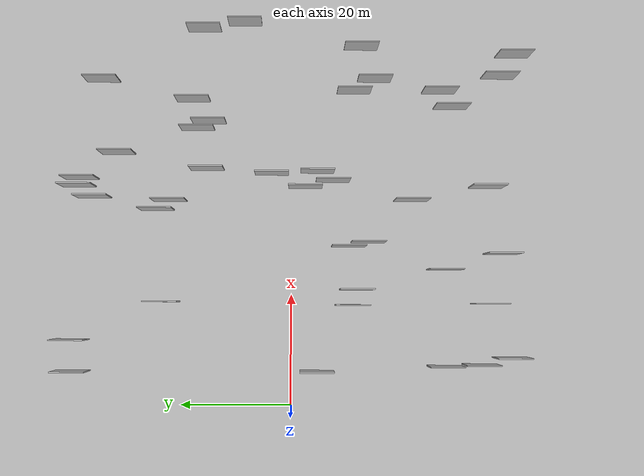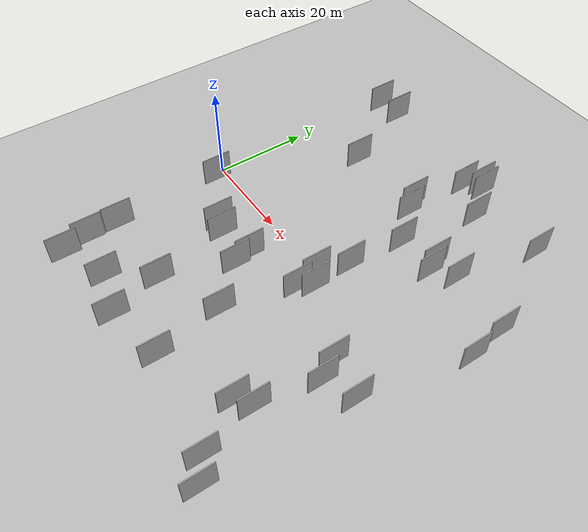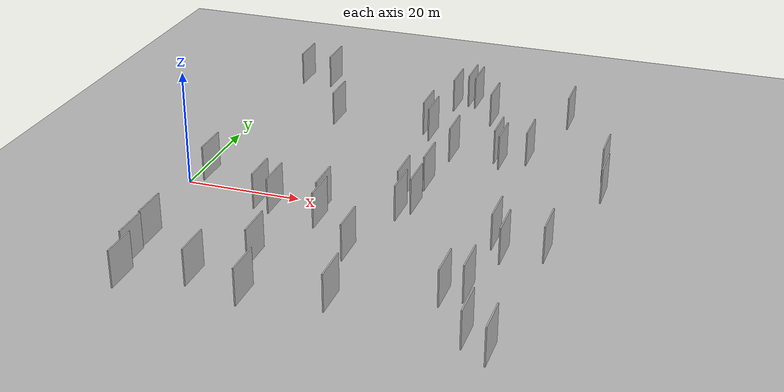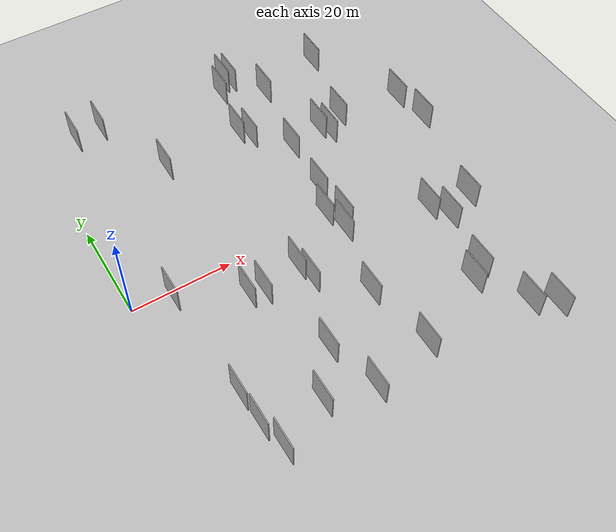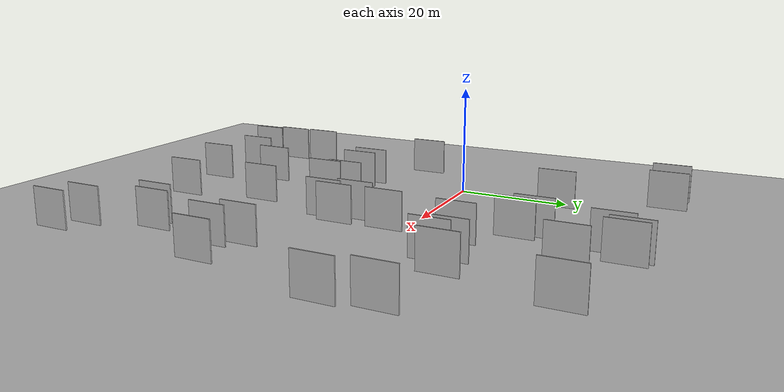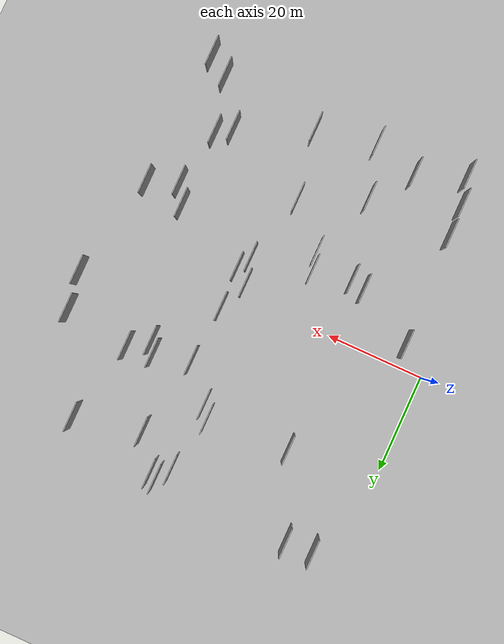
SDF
<?xml version="1.0" encoding="utf-8"?>

<sdf version="1.6">

   <world name="default">

      <gui fullscreen="0">

         <camera name="user_camera">

            <pose>-15 0 4.57585 0 0 0</pose>

            <view_controller>orbit</view_controller>

         </camera>

      </gui>

      <scene>

         <sky>

           <clouds>

             <speed>12</speed>

           </clouds>

         </sky>

         <ambient>0.4 0.4 0.4 1</ambient>

         <background>0.7 0.7 0.7 1</background>

         <shadows>1</shadows>

      </scene>

      <gravity>0 0 -9.8066</gravity>

      <magnetic_field>6e-06 2.3e-05 -4.2e-05</magnetic_field>

      <physics default="0" name="default_physics" type="ode">

         <ode>

            <solver>

               <type>quick</type>

               <iters>10</iters>

               <sor>1.0</sor>

               <use_dynamic_moi_rescaling>0</use_dynamic_moi_rescaling>

            </solver>

            <constraints>

               <cfm>0</cfm>

               <erp>0.2</erp>

               <contact_max_correcting_vel>100</contact_max_correcting_vel>

               <contact_surface_layer>0.001</contact_surface_layer>

            </constraints>

         </ode>

         <max_step_size>0.004</max_step_size>

         <real_time_factor>1</real_time_factor>

         <real_time_update_rate>250</real_time_update_rate>

      </physics>

      <light name="sun" type="directional">

         <cast_shadows>1</cast_shadows>

         <pose>0 0 10 0 0 0</pose>

         <diffuse>0.8 0.8 0.8 1</diffuse>

         <specular>0.2 0.2 0.2 1</specular>

         <attenuation>

            <range>1000</range>

            <constant>0.9</constant>

            <linear>0.01</linear>

            <quadratic>0.001</quadratic>

         </attenuation>

         <direction>-0.5 0.1 -0.9</direction>

      </light>

      <include>

         <name>ground_plane_1</name>

         <uri>model://HANNAS_ground_plane</uri>

         <pose>0 0 0  0 0 0</pose>

      </include>

      <include>

         <name>ground_plane_2</name>

         <uri>model://HANNAS_ground_plane</uri>

         <pose>100 0 0  0 0 0</pose>

      </include>

      <model name="HANNAS_wall_1">

         <static>1</static>

         <pose frame="">58.4703 34.0821 5.0 0.000000 0.000000 1.570796</pose>

         <link name="link">

            <pose frame="">0 0 3.00 0 0 0</pose>

            <collision name="collision">

               <geometry>

                  <box>

                     <size>6.00 0.2 6.00</size>

                  </box>

               </geometry>

               <max_contacts>10</max_contacts>

               <surface>

                  <contact>

                     <ode/>

                  </contact>

                  <bounce/>

                  <friction>

                     <torsional>

                        <ode/>

                     </torsional>

                     <ode/>

                  </friction>

               </surface>

            </collision>

            <visual name="visual">

               <cast_shadows>0</cast_shadows>

               <geometry>

                  <box>

                     <size>6.00 0.2 6.00</size>

                  </box>

               </geometry>

               <material>

                  <script>

                     <uri>model://HANNAS_wall/materials/scripts</uri>

                     <uri>model://HANNAS_wall/materials/textures</uri>

                     <name>vrc/HANNAS_wall</name>

                  </script>

               </material>

            </visual>

            <self_collide>0</self_collide>

            <enable_wind>0</enable_wind>

            <kinematic>0</kinematic>

         </link>

      </model>

      <model name="HANNAS_wall_2">

         <static>1</static>

         <pose frame="">39.1289 -2.4536 5.0 0.000000 0.000000 1.570796</pose>

         <link name="link">

            <pose frame="">0 0 3.00 0 0 0</pose>

            <collision name="collision">

               <geometry>

                  <box>

                     <size>6.00 0.2 6.00</size>

                  </box>

               </geometry>

               <max_contacts>10</max_contacts>

               <surface>

                  <contact>

                     <ode/>

                  </contact>

                  <bounce/>

                  <friction>

                     <torsional>

                        <ode/>

                     </torsional>

                     <ode/>

                  </friction>

               </surface>

            </collision>

            <visual name="visual">

               <cast_shadows>0</cast_shadows>

               <geometry>

                  <box>

                     <size>6.00 0.2 6.00</size>

                  </box>

               </geometry>

               <material>

                  <script>

                     <uri>model://HANNAS_wall/materials/scripts</uri>

                     <uri>model://HANNAS_wall/materials/textures</uri>

                     <name>vrc/HANNAS_wall</name>

                  </script>

               </material>

            </visual>

            <self_collide>0</self_collide>

            <enable_wind>0</enable_wind>

            <kinematic>0</kinematic>

         </link>

      </model>

      <model name="HANNAS_wall_3">

         <static>1</static>

         <pose frame="">37.2898 35.3310 5.0 0.000000 0.000000 1.570796</pose>

         <link name="link">

            <pose frame="">0 0 3.00 0 0 0</pose>

            <collision name="collision">

               <geometry>

                  <box>

                     <size>6.00 0.2 6.00</size>

                  </box>

               </geometry>

               <max_contacts>10</max_contacts>

               <surface>

                  <contact>

                     <ode/>

                  </contact>

                  <bounce/>

                  <friction>

                     <torsional>

                        <ode/>

                     </torsional>

                     <ode/>

                  </friction>

               </surface>

            </collision>

            <visual name="visual">

               <cast_shadows>0</cast_shadows>

               <geometry>

                  <box>

                     <size>6.00 0.2 6.00</size>

                  </box>

               </geometry>

               <material>

                  <script>

                     <uri>model://HANNAS_wall/materials/scripts</uri>

                     <uri>model://HANNAS_wall/materials/textures</uri>

                     <name>vrc/HANNAS_wall</name>

                  </script>

               </material>

            </visual>

            <self_collide>0</self_collide>

            <enable_wind>0</enable_wind>

            <kinematic>0</kinematic>

         </link>

      </model>

      <model name="HANNAS_wall_4">

         <static>1</static>

         <pose frame="">7.5327 -27.0088 5.0 0.000000 0.000000 1.570796</pose>

         <link name="link">

            <pose frame="">0 0 3.00 0 0 0</pose>

            <collision name="collision">

               <geometry>

                  <box>

                     <size>6.00 0.2 6.00</size>

                  </box>

               </geometry>

               <max_contacts>10</max_contacts>

               <surface>

                  <contact>

                     <ode/>

                  </contact>

                  <bounce/>

                  <friction>

                     <torsional>

                        <ode/>

                     </torsional>

                     <ode/>

                  </friction>

               </surface>

            </collision>

            <visual name="visual">

               <cast_shadows>0</cast_shadows>

               <geometry>

                  <box>

                     <size>6.00 0.2 6.00</size>

                  </box>

               </geometry>

               <material>

                  <script>

                     <uri>model://HANNAS_wall/materials/scripts</uri>

                     <uri>model://HANNAS_wall/materials/textures</uri>

                     <name>vrc/HANNAS_wall</name>

                  </script>

               </material>

            </visual>

            <self_collide>0</self_collide>

            <enable_wind>0</enable_wind>

            <kinematic>0</kinematic>

         </link>

      </model>

      <model name="HANNAS_wall_5">

         <static>1</static>

         <pose frame="">54.8426 17.7074 5.0 0.000000 0.000000 1.570796</pose>

         <link name="link">

            <pose frame="">0 0 3.00 0 0 0</pose>

            <collision name="collision">

               <geometry>

                  <box>

                     <size>6.00 0.2 6.00</size>

                  </box>

               </geometry>

               <max_contacts>10</max_contacts>

               <surface>

                  <contact>

                     <ode/>

                  </contact>

                  <bounce/>

                  <friction>

                     <torsional>

                        <ode/>

                     </torsional>

                     <ode/>

                  </friction>

               </surface>

            </collision>

            <visual name="visual">

               <cast_shadows>0</cast_shadows>

               <geometry>

                  <box>

                     <size>6.00 0.2 6.00</size>

                  </box>

               </geometry>

               <material>

                  <script>

                     <uri>model://HANNAS_wall/materials/scripts</uri>

                     <uri>model://HANNAS_wall/materials/textures</uri>

                     <name>vrc/HANNAS_wall</name>

                  </script>

               </material>

            </visual>

            <self_collide>0</self_collide>

            <enable_wind>0</enable_wind>

            <kinematic>0</kinematic>

         </link>

      </model>

      <model name="HANNAS_wall_6">

         <static>1</static>

         <pose frame="">50.8543 14.8226 5.0 0.000000 0.000000 1.570796</pose>

         <link name="link">

            <pose frame="">0 0 3.00 0 0 0</pose>

            <collision name="collision">

               <geometry>

                  <box>

                     <size>6.00 0.2 6.00</size>

                  </box>

               </geometry>

               <max_contacts>10</max_contacts>

               <surface>

                  <contact>

                     <ode/>

                  </contact>

                  <bounce/>

                  <friction>

                     <torsional>

                        <ode/>

                     </torsional>

                     <ode/>

                  </friction>

               </surface>

            </collision>

            <visual name="visual">

               <cast_shadows>0</cast_shadows>

               <geometry>

                  <box>

                     <size>6.00 0.2 6.00</size>

                  </box>

               </geometry>

               <material>

                  <script>

                     <uri>model://HANNAS_wall/materials/scripts</uri>

                     <uri>model://HANNAS_wall/materials/textures</uri>

                     <name>vrc/HANNAS_wall</name>

                  </script>

               </material>

            </visual>

            <self_collide>0</self_collide>

            <enable_wind>0</enable_wind>

            <kinematic>0</kinematic>

         </link>

      </model>

      <model name="HANNAS_wall_7">

         <static>1</static>

         <pose frame="">27.3128 -37.2842 5.0 0.000000 0.000000 1.570796</pose>

         <link name="link">

            <pose frame="">0 0 3.00 0 0 0</pose>

            <collision name="collision">

               <geometry>

                  <box>

                     <size>6.00 0.2 6.00</size>

                  </box>

               </geometry>

               <max_contacts>10</max_contacts>

               <surface>

                  <contact>

                     <ode/>

                  </contact>

                  <bounce/>

                  <friction>

                     <torsional>

                        <ode/>

                     </torsional>

                     <ode/>

                  </friction>

               </surface>

            </collision>

            <visual name="visual">

               <cast_shadows>0</cast_shadows>

               <geometry>

                  <box>

                     <size>6.00 0.2 6.00</size>

                  </box>

               </geometry>

               <material>

                  <script>

                     <uri>model://HANNAS_wall/materials/scripts</uri>

                     <uri>model://HANNAS_wall/materials/textures</uri>

                     <name>vrc/HANNAS_wall</name>

                  </script>

               </material>

            </visual>

            <self_collide>0</self_collide>

            <enable_wind>0</enable_wind>

            <kinematic>0</kinematic>

         </link>

      </model>

      <model name="HANNAS_wall_8">

         <static>1</static>

         <pose frame="">63.1718 -39.9099 5.0 0.000000 0.000000 1.570796</pose>

         <link name="link">

            <pose frame="">0 0 3.00 0 0 0</pose>

            <collision name="collision">

               <geometry>

                  <box>

                     <size>6.00 0.2 6.00</size>

                  </box>

               </geometry>

               <max_contacts>10</max_contacts>

               <surface>

                  <contact>

                     <ode/>

                  </contact>

                  <bounce/>

                  <friction>

                     <torsional>

                        <ode/>

                     </torsional>

                     <ode/>

                  </friction>

               </surface>

            </collision>

            <visual name="visual">

               <cast_shadows>0</cast_shadows>

               <geometry>

                  <box>

                     <size>6.00 0.2 6.00</size>

                  </box>

               </geometry>

               <material>

                  <script>

                     <uri>model://HANNAS_wall/materials/scripts</uri>

                     <uri>model://HANNAS_wall/materials/textures</uri>

                     <name>vrc/HANNAS_wall</name>

                  </script>

               </material>

            </visual>

            <self_collide>0</self_collide>

            <enable_wind>0</enable_wind>

            <kinematic>0</kinematic>

         </link>

      </model>

      <model name="HANNAS_wall_9">

         <static>1</static>

         <pose frame="">64.5312 -12.4695 5.0 0.000000 0.000000 1.570796</pose>

         <link name="link">

            <pose frame="">0 0 3.00 0 0 0</pose>

            <collision name="collision">

               <geometry>

                  <box>

                     <size>6.00 0.2 6.00</size>

                  </box>

               </geometry>

               <max_contacts>10</max_contacts>

               <surface>

                  <contact>

                     <ode/>

                  </contact>

                  <bounce/>

                  <friction>

                     <torsional>

                        <ode/>

                     </torsional>

                     <ode/>

                  </friction>

               </surface>

            </collision>

            <visual name="visual">

               <cast_shadows>0</cast_shadows>

               <geometry>

                  <box>

                     <size>6.00 0.2 6.00</size>

                  </box>

               </geometry>

               <material>

                  <script>

                     <uri>model://HANNAS_wall/materials/scripts</uri>

                     <uri>model://HANNAS_wall/materials/textures</uri>

                     <name>vrc/HANNAS_wall</name>

                  </script>

               </material>

            </visual>

            <self_collide>0</self_collide>

            <enable_wind>0</enable_wind>

            <kinematic>0</kinematic>

         </link>

      </model>

      <model name="HANNAS_wall_10">

         <static>1</static>

         <pose frame="">18.1744 -10.7670 5.0 0.000000 0.000000 1.570796</pose>

         <link name="link">

            <pose frame="">0 0 3.00 0 0 0</pose>

            <collision name="collision">

               <geometry>

                  <box>

                     <size>6.00 0.2 6.00</size>

                  </box>

               </geometry>

               <max_contacts>10</max_contacts>

               <surface>

                  <contact>

                     <ode/>

                  </contact>

                  <bounce/>

                  <friction>

                     <torsional>

                        <ode/>

                     </torsional>

                     <ode/>

                  </friction>

               </surface>

            </collision>

            <visual name="visual">

               <cast_shadows>0</cast_shadows>

               <geometry>

                  <box>

                     <size>6.00 0.2 6.00</size>

                  </box>

               </geometry>

               <material>

                  <script>

                     <uri>model://HANNAS_wall/materials/scripts</uri>

                     <uri>model://HANNAS_wall/materials/textures</uri>

                     <name>vrc/HANNAS_wall</name>

                  </script>

               </material>

            </visual>

            <self_collide>0</self_collide>

            <enable_wind>0</enable_wind>

            <kinematic>0</kinematic>

         </link>

      </model>

      <model name="HANNAS_wall_11">

         <static>1</static>

         <pose frame="">41.8810 -4.5876 5.0 0.000000 0.000000 1.570796</pose>

         <link name="link">

            <pose frame="">0 0 3.00 0 0 0</pose>

            <collision name="collision">

               <geometry>

                  <box>

                     <size>6.00 0.2 6.00</size>

                  </box>

               </geometry>

               <max_contacts>10</max_contacts>

               <surface>

                  <contact>

                     <ode/>

                  </contact>

                  <bounce/>

                  <friction>

                     <torsional>

                        <ode/>

                     </torsional>

                     <ode/>

                  </friction>

               </surface>

            </collision>

            <visual name="visual">

               <cast_shadows>0</cast_shadows>

               <geometry>

                  <box>

                     <size>6.00 0.2 6.00</size>

                  </box>

               </geometry>

               <material>

                  <script>

                     <uri>model://HANNAS_wall/materials/scripts</uri>

                     <uri>model://HANNAS_wall/materials/textures</uri>

                     <name>vrc/HANNAS_wall</name>

                  </script>

               </material>

            </visual>

            <self_collide>0</self_collide>

            <enable_wind>0</enable_wind>

            <kinematic>0</kinematic>

         </link>

      </model>

      <model name="HANNAS_wall_12">

         <static>1</static>

         <pose frame="">41.5026 3.5121 5.0 0.000000 0.000000 1.570796</pose>

         <link name="link">

            <pose frame="">0 0 3.00 0 0 0</pose>

            <collision name="collision">

               <geometry>

                  <box>

                     <size>6.00 0.2 6.00</size>

                  </box>

               </geometry>

               <max_contacts>10</max_contacts>

               <surface>

                  <contact>

                     <ode/>

                  </contact>

                  <bounce/>

                  <friction>

                     <torsional>

                        <ode/>

                     </torsional>

                     <ode/>

                  </friction>

               </surface>

            </collision>

            <visual name="visual">

               <cast_shadows>0</cast_shadows>

               <geometry>

                  <box>

                     <size>6.00 0.2 6.00</size>

                  </box>

               </geometry>

               <material>

                  <script>

                     <uri>model://HANNAS_wall/materials/scripts</uri>

                     <uri>model://HANNAS_wall/materials/textures</uri>

                     <name>vrc/HANNAS_wall</name>

                  </script>

               </material>

            </visual>

            <self_collide>0</self_collide>

            <enable_wind>0</enable_wind>

            <kinematic>0</kinematic>

         </link>

      </model>

      <model name="HANNAS_wall_13">

         <static>1</static>

         <pose frame="">45.2377 31.1383 5.0 0.000000 0.000000 1.570796</pose>

         <link name="link">

            <pose frame="">0 0 3.00 0 0 0</pose>

            <collision name="collision">

               <geometry>

                  <box>

                     <size>6.00 0.2 6.00</size>

                  </box>

               </geometry>

               <max_contacts>10</max_contacts>

               <surface>

                  <contact>

                     <ode/>

                  </contact>

                  <bounce/>

                  <friction>

                     <torsional>

                        <ode/>

                     </torsional>

                     <ode/>

                  </friction>

               </surface>

            </collision>

            <visual name="visual">

               <cast_shadows>0</cast_shadows>

               <geometry>

                  <box>

                     <size>6.00 0.2 6.00</size>

                  </box>

               </geometry>

               <material>

                  <script>

                     <uri>model://HANNAS_wall/materials/scripts</uri>

                     <uri>model://HANNAS_wall/materials/textures</uri>

                     <name>vrc/HANNAS_wall</name>

                  </script>

               </material>

            </visual>

            <self_collide>0</self_collide>

            <enable_wind>0</enable_wind>

            <kinematic>0</kinematic>

         </link>

      </model>

      <model name="HANNAS_wall_14">

         <static>1</static>

         <pose frame="">39.2931 38.1117 5.0 0.000000 0.000000 1.570796</pose>

         <link name="link">

            <pose frame="">0 0 3.00 0 0 0</pose>

            <collision name="collision">

               <geometry>

                  <box>

                     <size>6.00 0.2 6.00</size>

                  </box>

               </geometry>

               <max_contacts>10</max_contacts>

               <surface>

                  <contact>

                     <ode/>

                  </contact>

                  <bounce/>

                  <friction>

                     <torsional>

                        <ode/>

                     </torsional>

                     <ode/>

                  </friction>

               </surface>

            </collision>

            <visual name="visual">

               <cast_shadows>0</cast_shadows>

               <geometry>

                  <box>

                     <size>6.00 0.2 6.00</size>

                  </box>

               </geometry>

               <material>

                  <script>

                     <uri>model://HANNAS_wall/materials/scripts</uri>

                     <uri>model://HANNAS_wall/materials/textures</uri>

                     <name>vrc/HANNAS_wall</name>

                  </script>

               </material>

            </visual>

            <self_collide>0</self_collide>

            <enable_wind>0</enable_wind>

            <kinematic>0</kinematic>

         </link>

      </model>

      <model name="HANNAS_wall_15">

         <static>1</static>

         <pose frame="">29.2895 -13.5957 5.0 0.000000 0.000000 1.570796</pose>

         <link name="link">

            <pose frame="">0 0 3.00 0 0 0</pose>

            <collision name="collision">

               <geometry>

                  <box>

                     <size>6.00 0.2 6.00</size>

                  </box>

               </geometry>

               <max_contacts>10</max_contacts>

               <surface>

                  <contact>

                     <ode/>

                  </contact>

                  <bounce/>

                  <friction>

                     <torsional>

                        <ode/>

                     </torsional>

                     <ode/>

                  </friction>

               </surface>

            </collision>

            <visual name="visual">

               <cast_shadows>0</cast_shadows>

               <geometry>

                  <box>

                     <size>6.00 0.2 6.00</size>

                  </box>

               </geometry>

               <material>

                  <script>

                     <uri>model://HANNAS_wall/materials/scripts</uri>

                     <uri>model://HANNAS_wall/materials/textures</uri>

                     <name>vrc/HANNAS_wall</name>

                  </script>

               </material>

            </visual>

            <self_collide>0</self_collide>

            <enable_wind>0</enable_wind>

            <kinematic>0</kinematic>

         </link>

      </model>

      <model name="HANNAS_wall_16">

         <static>1</static>

         <pose frame="">36.6816 21.6988 5.0 0.000000 0.000000 1.570796</pose>

         <link name="link">

            <pose frame="">0 0 3.00 0 0 0</pose>

            <collision name="collision">

               <geometry>

                  <box>

                     <size>6.00 0.2 6.00</size>

                  </box>

               </geometry>

               <max_contacts>10</max_contacts>

               <surface>

                  <contact>

                     <ode/>

                  </contact>

                  <bounce/>

                  <friction>

                     <torsional>

                        <ode/>

                     </torsional>

                     <ode/>

                  </friction>

               </surface>

            </collision>

            <visual name="visual">

               <cast_shadows>0</cast_shadows>

               <geometry>

                  <box>

                     <size>6.00 0.2 6.00</size>

                  </box>

               </geometry>

               <material>

                  <script>

                     <uri>model://HANNAS_wall/materials/scripts</uri>

                     <uri>model://HANNAS_wall/materials/textures</uri>

                     <name>vrc/HANNAS_wall</name>

                  </script>

               </material>

            </visual>

            <self_collide>0</self_collide>

            <enable_wind>0</enable_wind>

            <kinematic>0</kinematic>

         </link>

      </model>

      <model name="HANNAS_wall_17">

         <static>1</static>

         <pose frame="">42.3460 15.0995 5.0 0.000000 0.000000 1.570796</pose>

         <link name="link">

            <pose frame="">0 0 3.00 0 0 0</pose>

            <collision name="collision">

               <geometry>

                  <box>

                     <size>6.00 0.2 6.00</size>

                  </box>

               </geometry>

               <max_contacts>10</max_contacts>

               <surface>

                  <contact>

                     <ode/>

                  </contact>

                  <bounce/>

                  <friction>

                     <torsional>

                        <ode/>

                     </torsional>

                     <ode/>

                  </friction>

               </surface>

            </collision>

            <visual name="visual">

               <cast_shadows>0</cast_shadows>

               <geometry>

                  <box>

                     <size>6.00 0.2 6.00</size>

                  </box>

               </geometry>

               <material>

                  <script>

                     <uri>model://HANNAS_wall/materials/scripts</uri>

                     <uri>model://HANNAS_wall/materials/textures</uri>

                     <name>vrc/HANNAS_wall</name>

                  </script>

               </material>

            </visual>

            <self_collide>0</self_collide>

            <enable_wind>0</enable_wind>

            <kinematic>0</kinematic>

         </link>

      </model>

      <model name="HANNAS_wall_18">

         <static>1</static>

         <pose frame="">12.0139 38.8188 5.0 0.000000 0.000000 1.570796</pose>

         <link name="link">

            <pose frame="">0 0 3.00 0 0 0</pose>

            <collision name="collision">

               <geometry>

                  <box>

                     <size>6.00 0.2 6.00</size>

                  </box>

               </geometry>

               <max_contacts>10</max_contacts>

               <surface>

                  <contact>

                     <ode/>

                  </contact>

                  <bounce/>

                  <friction>

                     <torsional>

                        <ode/>

                     </torsional>

                     <ode/>

                  </friction>

               </surface>

            </collision>

            <visual name="visual">

               <cast_shadows>0</cast_shadows>

               <geometry>

                  <box>

                     <size>6.00 0.2 6.00</size>

                  </box>

               </geometry>

               <material>

                  <script>

                     <uri>model://HANNAS_wall/materials/scripts</uri>

                     <uri>model://HANNAS_wall/materials/textures</uri>

                     <name>vrc/HANNAS_wall</name>

                  </script>

               </material>

            </visual>

            <self_collide>0</self_collide>

            <enable_wind>0</enable_wind>

            <kinematic>0</kinematic>

         </link>

      </model>

      <model name="HANNAS_wall_19">

         <static>1</static>

         <pose frame="">59.2169 -37.2343 5.0 0.000000 0.000000 1.570796</pose>

         <link name="link">

            <pose frame="">0 0 3.00 0 0 0</pose>

            <collision name="collision">

               <geometry>

                  <box>

                     <size>6.00 0.2 6.00</size>

                  </box>

               </geometry>

               <max_contacts>10</max_contacts>

               <surface>

                  <contact>

                     <ode/>

                  </contact>

                  <bounce/>

                  <friction>

                     <torsional>

                        <ode/>

                     </torsional>

                     <ode/>

                  </friction>

               </surface>

            </collision>

            <visual name="visual">

               <cast_shadows>0</cast_shadows>

               <geometry>

                  <box>

                     <size>6.00 0.2 6.00</size>

                  </box>

               </geometry>

               <material>

                  <script>

                     <uri>model://HANNAS_wall/materials/scripts</uri>

                     <uri>model://HANNAS_wall/materials/textures</uri>

                     <name>vrc/HANNAS_wall</name>

                  </script>

               </material>

            </visual>

            <self_collide>0</self_collide>

            <enable_wind>0</enable_wind>

            <kinematic>0</kinematic>

         </link>

      </model>

      <model name="HANNAS_wall_20">

         <static>1</static>

         <pose frame="">7.8128 -33.2635 5.0 0.000000 0.000000 1.570796</pose>

         <link name="link">

            <pose frame="">0 0 3.00 0 0 0</pose>

            <collision name="collision">

               <geometry>

                  <box>

                     <size>6.00 0.2 6.00</size>

                  </box>

               </geometry>

               <max_contacts>10</max_contacts>

               <surface>

                  <contact>

                     <ode/>

                  </contact>

                  <bounce/>

                  <friction>

                     <torsional>

                        <ode/>

                     </torsional>

                     <ode/>

                  </friction>

               </surface>

            </collision>

            <visual name="visual">

               <cast_shadows>0</cast_shadows>

               <geometry>

                  <box>

                     <size>6.00 0.2 6.00</size>

                  </box>

               </geometry>

               <material>

                  <script>

                     <uri>model://HANNAS_wall/materials/scripts</uri>

                     <uri>model://HANNAS_wall/materials/textures</uri>

                     <name>vrc/HANNAS_wall</name>

                  </script>

               </material>

            </visual>

            <self_collide>0</self_collide>

            <enable_wind>0</enable_wind>

            <kinematic>0</kinematic>

         </link>

      </model>

      <model name="HANNAS_wall_21">

         <static>1</static>

         <pose frame="">24.4814 -27.0619 5.0 0.000000 0.000000 1.570796</pose>

         <link name="link">

            <pose frame="">0 0 3.00 0 0 0</pose>

            <collision name="collision">

               <geometry>

                  <box>

                     <size>6.00 0.2 6.00</size>

                  </box>

               </geometry>

               <max_contacts>10</max_contacts>

               <surface>

                  <contact>

                     <ode/>

                  </contact>

                  <bounce/>

                  <friction>

                     <torsional>

                        <ode/>

                     </torsional>

                     <ode/>

                  </friction>

               </surface>

            </collision>

            <visual name="visual">

               <cast_shadows>0</cast_shadows>

               <geometry>

                  <box>

                     <size>6.00 0.2 6.00</size>

                  </box>

               </geometry>

               <material>

                  <script>

                     <uri>model://HANNAS_wall/materials/scripts</uri>

                     <uri>model://HANNAS_wall/materials/textures</uri>

                     <name>vrc/HANNAS_wall</name>

                  </script>

               </material>

            </visual>

            <self_collide>0</self_collide>

            <enable_wind>0</enable_wind>

            <kinematic>0</kinematic>

         </link>

      </model>

      <model name="HANNAS_wall_22">

         <static>1</static>

         <pose frame="">6.5436 38.5340 5.0 0.000000 0.000000 1.570796</pose>

         <link name="link">

            <pose frame="">0 0 3.00 0 0 0</pose>

            <collision name="collision">

               <geometry>

                  <box>

                     <size>6.00 0.2 6.00</size>

                  </box>

               </geometry>

               <max_contacts>10</max_contacts>

               <surface>

                  <contact>

                     <ode/>

                  </contact>

                  <bounce/>

                  <friction>

                     <torsional>

                        <ode/>

                     </torsional>

                     <ode/>

                  </friction>

               </surface>

            </collision>

            <visual name="visual">

               <cast_shadows>0</cast_shadows>

               <geometry>

                  <box>

                     <size>6.00 0.2 6.00</size>

                  </box>

               </geometry>

               <material>

                  <script>

                     <uri>model://HANNAS_wall/materials/scripts</uri>

                     <uri>model://HANNAS_wall/materials/textures</uri>

                     <name>vrc/HANNAS_wall</name>

                  </script>

               </material>

            </visual>

            <self_collide>0</self_collide>

            <enable_wind>0</enable_wind>

            <kinematic>0</kinematic>

         </link>

      </model>

      <model name="HANNAS_wall_23">

         <static>1</static>

         <pose frame="">49.6077 16.8620 5.0 0.000000 0.000000 1.570796</pose>

         <link name="link">

            <pose frame="">0 0 3.00 0 0 0</pose>

            <collision name="collision">

               <geometry>

                  <box>

                     <size>6.00 0.2 6.00</size>

                  </box>

               </geometry>

               <max_contacts>10</max_contacts>

               <surface>

                  <contact>

                     <ode/>

                  </contact>

                  <bounce/>

                  <friction>

                     <torsional>

                        <ode/>

                     </torsional>

                     <ode/>

                  </friction>

               </surface>

            </collision>

            <visual name="visual">

               <cast_shadows>0</cast_shadows>

               <geometry>

                  <box>

                     <size>6.00 0.2 6.00</size>

                  </box>

               </geometry>

               <material>

                  <script>

                     <uri>model://HANNAS_wall/materials/scripts</uri>

                     <uri>model://HANNAS_wall/materials/textures</uri>

                     <name>vrc/HANNAS_wall</name>

                  </script>

               </material>

            </visual>

            <self_collide>0</self_collide>

            <enable_wind>0</enable_wind>

            <kinematic>0</kinematic>

         </link>

      </model>

      <model name="HANNAS_wall_24">

         <static>1</static>

         <pose frame="">18.7221 22.8347 5.0 0.000000 0.000000 1.570796</pose>

         <link name="link">

            <pose frame="">0 0 3.00 0 0 0</pose>

            <collision name="collision">

               <geometry>

                  <box>

                     <size>6.00 0.2 6.00</size>

                  </box>

               </geometry>

               <max_contacts>10</max_contacts>

               <surface>

                  <contact>

                     <ode/>

                  </contact>

                  <bounce/>

                  <friction>

                     <torsional>

                        <ode/>

                     </torsional>

                     <ode/>

                  </friction>

               </surface>

            </collision>

            <visual name="visual">

               <cast_shadows>0</cast_shadows>

               <geometry>

                  <box>

                     <size>6.00 0.2 6.00</size>

                  </box>

               </geometry>

               <material>

                  <script>

                     <uri>model://HANNAS_wall/materials/scripts</uri>

                     <uri>model://HANNAS_wall/materials/textures</uri>

                     <name>vrc/HANNAS_wall</name>

                  </script>

               </material>

            </visual>

            <self_collide>0</self_collide>

            <enable_wind>0</enable_wind>

            <kinematic>0</kinematic>

         </link>

      </model>

      <model name="HANNAS_wall_25">

         <static>1</static>

         <pose frame="">56.4990 -26.4790 5.0 0.000000 0.000000 1.570796</pose>

         <link name="link">

            <pose frame="">0 0 3.00 0 0 0</pose>

            <collision name="collision">

               <geometry>

                  <box>

                     <size>6.00 0.2 6.00</size>

                  </box>

               </geometry>

               <max_contacts>10</max_contacts>

               <surface>

                  <contact>

                     <ode/>

                  </contact>

                  <bounce/>

                  <friction>

                     <torsional>

                        <ode/>

                     </torsional>

                     <ode/>

                  </friction>

               </surface>

            </collision>

            <visual name="visual">

               <cast_shadows>0</cast_shadows>

               <geometry>

                  <box>

                     <size>6.00 0.2 6.00</size>

                  </box>

               </geometry>

               <material>

                  <script>

                     <uri>model://HANNAS_wall/materials/scripts</uri>

                     <uri>model://HANNAS_wall/materials/textures</uri>

                     <name>vrc/HANNAS_wall</name>

                  </script>

               </material>

            </visual>

            <self_collide>0</self_collide>

            <enable_wind>0</enable_wind>

            <kinematic>0</kinematic>

         </link>

      </model>

      <model name="HANNAS_wall_26">

         <static>1</static>

         <pose frame="">28.5734 -10.1430 5.0 0.000000 0.000000 1.570796</pose>

         <link name="link">

            <pose frame="">0 0 3.00 0 0 0</pose>

            <collision name="collision">

               <geometry>

                  <box>

                     <size>6.00 0.2 6.00</size>

                  </box>

               </geometry>

               <max_contacts>10</max_contacts>

               <surface>

                  <contact>

                     <ode/>

                  </contact>

                  <bounce/>

                  <friction>

                     <torsional>

                        <ode/>

                     </torsional>

                     <ode/>

                  </friction>

               </surface>

            </collision>

            <visual name="visual">

               <cast_shadows>0</cast_shadows>

               <geometry>

                  <box>

                     <size>6.00 0.2 6.00</size>

                  </box>

               </geometry>

               <material>

                  <script>

                     <uri>model://HANNAS_wall/materials/scripts</uri>

                     <uri>model://HANNAS_wall/materials/textures</uri>

                     <name>vrc/HANNAS_wall</name>

                  </script>

               </material>

            </visual>

            <self_collide>0</self_collide>

            <enable_wind>0</enable_wind>

            <kinematic>0</kinematic>

         </link>

      </model>

      <model name="HANNAS_wall_27">

         <static>1</static>

         <pose frame="">56.4476 -11.1707 5.0 0.000000 0.000000 1.570796</pose>

         <link name="link">

            <pose frame="">0 0 3.00 0 0 0</pose>

            <collision name="collision">

               <geometry>

                  <box>

                     <size>6.00 0.2 6.00</size>

                  </box>

               </geometry>

               <max_contacts>10</max_contacts>

               <surface>

                  <contact>

                     <ode/>

                  </contact>

                  <bounce/>

                  <friction>

                     <torsional>

                        <ode/>

                     </torsional>

                     <ode/>

                  </friction>

               </surface>

            </collision>

            <visual name="visual">

               <cast_shadows>0</cast_shadows>

               <geometry>

                  <box>

                     <size>6.00 0.2 6.00</size>

                  </box>

               </geometry>

               <material>

                  <script>

                     <uri>model://HANNAS_wall/materials/scripts</uri>

                     <uri>model://HANNAS_wall/materials/textures</uri>

                     <name>vrc/HANNAS_wall</name>

                  </script>

               </material>

            </visual>

            <self_collide>0</self_collide>

            <enable_wind>0</enable_wind>

            <kinematic>0</kinematic>

         </link>

      </model>

      <model name="HANNAS_wall_28">

         <static>1</static>

         <pose frame="">40.2530 -7.3576 5.0 0.000000 0.000000 1.570796</pose>

         <link name="link">

            <pose frame="">0 0 3.00 0 0 0</pose>

            <collision name="collision">

               <geometry>

                  <box>

                     <size>6.00 0.2 6.00</size>

                  </box>

               </geometry>

               <max_contacts>10</max_contacts>

               <surface>

                  <contact>

                     <ode/>

                  </contact>

                  <bounce/>

                  <friction>

                     <torsional>

                        <ode/>

                     </torsional>

                     <ode/>

                  </friction>

               </surface>

            </collision>

            <visual name="visual">

               <cast_shadows>0</cast_shadows>

               <geometry>

                  <box>

                     <size>6.00 0.2 6.00</size>

                  </box>

               </geometry>

               <material>

                  <script>

                     <uri>model://HANNAS_wall/materials/scripts</uri>

                     <uri>model://HANNAS_wall/materials/textures</uri>

                     <name>vrc/HANNAS_wall</name>

                  </script>

               </material>

            </visual>

            <self_collide>0</self_collide>

            <enable_wind>0</enable_wind>

            <kinematic>0</kinematic>

         </link>

      </model>

      <model name="HANNAS_wall_29">

         <static>1</static>

         <pose frame="">67.8617 15.8248 5.0 0.000000 0.000000 1.570796</pose>

         <link name="link">

            <pose frame="">0 0 3.00 0 0 0</pose>

            <collision name="collision">

               <geometry>

                  <box>

                     <size>6.00 0.2 6.00</size>

                  </box>

               </geometry>

               <max_contacts>10</max_contacts>

               <surface>

                  <contact>

                     <ode/>

                  </contact>

                  <bounce/>

                  <friction>

                     <torsional>

                        <ode/>

                     </torsional>

                     <ode/>

                  </friction>

               </surface>

            </collision>

            <visual name="visual">

               <cast_shadows>0</cast_shadows>

               <geometry>

                  <box>

                     <size>6.00 0.2 6.00</size>

                  </box>

               </geometry>

               <material>

                  <script>

                     <uri>model://HANNAS_wall/materials/scripts</uri>

                     <uri>model://HANNAS_wall/materials/textures</uri>

                     <name>vrc/HANNAS_wall</name>

                  </script>

               </material>

            </visual>

            <self_collide>0</self_collide>

            <enable_wind>0</enable_wind>

            <kinematic>0</kinematic>

         </link>

      </model>

      <model name="HANNAS_wall_30">

         <static>1</static>

         <pose frame="">53.5767 -28.5361 5.0 0.000000 0.000000 1.570796</pose>

         <link name="link">

            <pose frame="">0 0 3.00 0 0 0</pose>

            <collision name="collision">

               <geometry>

                  <box>

                     <size>6.00 0.2 6.00</size>

                  </box>

               </geometry>

               <max_contacts>10</max_contacts>

               <surface>

                  <contact>

                     <ode/>

                  </contact>

                  <bounce/>

                  <friction>

                     <torsional>

                        <ode/>

                     </torsional>

                     <ode/>

                  </friction>

               </surface>

            </collision>

            <visual name="visual">

               <cast_shadows>0</cast_shadows>

               <geometry>

                  <box>

                     <size>6.00 0.2 6.00</size>

                  </box>

               </geometry>

               <material>

                  <script>

                     <uri>model://HANNAS_wall/materials/scripts</uri>

                     <uri>model://HANNAS_wall/materials/textures</uri>

                     <name>vrc/HANNAS_wall</name>

                  </script>

               </material>

            </visual>

            <self_collide>0</self_collide>

            <enable_wind>0</enable_wind>

            <kinematic>0</kinematic>

         </link>

      </model>

      <model name="HANNAS_wall_31">

         <static>1</static>

         <pose frame="">58.5955 -14.8465 5.0 0.000000 0.000000 1.570796</pose>

         <link name="link">

            <pose frame="">0 0 3.00 0 0 0</pose>

            <collision name="collision">

               <geometry>

                  <box>

                     <size>6.00 0.2 6.00</size>

                  </box>

               </geometry>

               <max_contacts>10</max_contacts>

               <surface>

                  <contact>

                     <ode/>

                  </contact>

                  <bounce/>

                  <friction>

                     <torsional>

                        <ode/>

                     </torsional>

                     <ode/>

                  </friction>

               </surface>

            </collision>

            <visual name="visual">

               <cast_shadows>0</cast_shadows>

               <geometry>

                  <box>

                     <size>6.00 0.2 6.00</size>

                  </box>

               </geometry>

               <material>

                  <script>

                     <uri>model://HANNAS_wall/materials/scripts</uri>

                     <uri>model://HANNAS_wall/materials/textures</uri>

                     <name>vrc/HANNAS_wall</name>

                  </script>

               </material>

            </visual>

            <self_collide>0</self_collide>

            <enable_wind>0</enable_wind>

            <kinematic>0</kinematic>

         </link>

      </model>

      <model name="HANNAS_wall_32">

         <static>1</static>

         <pose frame="">39.2315 -34.7940 5.0 0.000000 0.000000 1.570796</pose>

         <link name="link">

            <pose frame="">0 0 3.00 0 0 0</pose>

            <collision name="collision">

               <geometry>

                  <box>

                     <size>6.00 0.2 6.00</size>

                  </box>

               </geometry>

               <max_contacts>10</max_contacts>

               <surface>

                  <contact>

                     <ode/>

                  </contact>

                  <bounce/>

                  <friction>

                     <torsional>

                        <ode/>

                     </torsional>

                     <ode/>

                  </friction>

               </surface>

            </collision>

            <visual name="visual">

               <cast_shadows>0</cast_shadows>

               <geometry>

                  <box>

                     <size>6.00 0.2 6.00</size>

                  </box>

               </geometry>

               <material>

                  <script>

                     <uri>model://HANNAS_wall/materials/scripts</uri>

                     <uri>model://HANNAS_wall/materials/textures</uri>

                     <name>vrc/HANNAS_wall</name>

                  </script>

               </material>

            </visual>

            <self_collide>0</self_collide>

            <enable_wind>0</enable_wind>

            <kinematic>0</kinematic>

         </link>

      </model>

      <model name="HANNAS_wall_33">

         <static>1</static>

         <pose frame="">20.9404 -11.5386 5.0 0.000000 0.000000 1.570796</pose>

         <link name="link">

            <pose frame="">0 0 3.00 0 0 0</pose>

            <collision name="collision">

               <geometry>

                  <box>

                     <size>6.00 0.2 6.00</size>

                  </box>

               </geometry>

               <max_contacts>10</max_contacts>

               <surface>

                  <contact>

                     <ode/>

                  </contact>

                  <bounce/>

                  <friction>

                     <torsional>

                        <ode/>

                     </torsional>

                     <ode/>

                  </friction>

               </surface>

            </collision>

            <visual name="visual">

               <cast_shadows>0</cast_shadows>

               <geometry>

                  <box>

                     <size>6.00 0.2 6.00</size>

                  </box>

               </geometry>

               <material>

                  <script>

                     <uri>model://HANNAS_wall/materials/scripts</uri>

                     <uri>model://HANNAS_wall/materials/textures</uri>

                     <name>vrc/HANNAS_wall</name>

                  </script>

               </material>

            </visual>

            <self_collide>0</self_collide>

            <enable_wind>0</enable_wind>

            <kinematic>0</kinematic>

         </link>

      </model>

      <model name="HANNAS_wall_34">

         <static>1</static>

         <pose frame="">6.5994 -4.5141 5.0 0.000000 0.000000 1.570796</pose>

         <link name="link">

            <pose frame="">0 0 3.00 0 0 0</pose>

            <collision name="collision">

               <geometry>

                  <box>

                     <size>6.00 0.2 6.00</size>

                  </box>

               </geometry>

               <max_contacts>10</max_contacts>

               <surface>

                  <contact>

                     <ode/>

                  </contact>

                  <bounce/>

                  <friction>

                     <torsional>

                        <ode/>

                     </torsional>

                     <ode/>

                  </friction>

               </surface>

            </collision>

            <visual name="visual">

               <cast_shadows>0</cast_shadows>

               <geometry>

                  <box>

                     <size>6.00 0.2 6.00</size>

                  </box>

               </geometry>

               <material>

                  <script>

                     <uri>model://HANNAS_wall/materials/scripts</uri>

                     <uri>model://HANNAS_wall/materials/textures</uri>

                     <name>vrc/HANNAS_wall</name>

                  </script>

               </material>

            </visual>

            <self_collide>0</self_collide>

            <enable_wind>0</enable_wind>

            <kinematic>0</kinematic>

         </link>

      </model>

      <model name="HANNAS_wall_35">

         <static>1</static>

         <pose frame="">40.6539 37.6162 5.0 0.000000 0.000000 1.570796</pose>

         <link name="link">

            <pose frame="">0 0 3.00 0 0 0</pose>

            <collision name="collision">

               <geometry>

                  <box>

                     <size>6.00 0.2 6.00</size>

                  </box>

               </geometry>

               <max_contacts>10</max_contacts>

               <surface>

                  <contact>

                     <ode/>

                  </contact>

                  <bounce/>

                  <friction>

                     <torsional>

                        <ode/>

                     </torsional>

                     <ode/>

                  </friction>

               </surface>

            </collision>

            <visual name="visual">

               <cast_shadows>0</cast_shadows>

               <geometry>

                  <box>

                     <size>6.00 0.2 6.00</size>

                  </box>

               </geometry>

               <material>

                  <script>

                     <uri>model://HANNAS_wall/materials/scripts</uri>

                     <uri>model://HANNAS_wall/materials/textures</uri>

                     <name>vrc/HANNAS_wall</name>

                  </script>

               </material>

            </visual>

            <self_collide>0</self_collide>

            <enable_wind>0</enable_wind>

            <kinematic>0</kinematic>

         </link>

      </model>

      <model name="HANNAS_wall_36">

         <static>1</static>

         <pose frame="">9.0481 -38.6206 5.0 0.000000 0.000000 1.570796</pose>

         <link name="link">

            <pose frame="">0 0 3.00 0 0 0</pose>

            <collision name="collision">

               <geometry>

                  <box>

                     <size>6.00 0.2 6.00</size>

                  </box>

               </geometry>

               <max_contacts>10</max_contacts>

               <surface>

                  <contact>

                     <ode/>

                  </contact>

                  <bounce/>

                  <friction>

                     <torsional>

                        <ode/>

                     </torsional>

                     <ode/>

                  </friction>

               </surface>

            </collision>

            <visual name="visual">

               <cast_shadows>0</cast_shadows>

               <geometry>

                  <box>

                     <size>6.00 0.2 6.00</size>

                  </box>

               </geometry>

               <material>

                  <script>

                     <uri>model://HANNAS_wall/materials/scripts</uri>

                     <uri>model://HANNAS_wall/materials/textures</uri>

                     <name>vrc/HANNAS_wall</name>

                  </script>

               </material>

            </visual>

            <self_collide>0</self_collide>

            <enable_wind>0</enable_wind>

            <kinematic>0</kinematic>

         </link>

      </model>

      <model name="HANNAS_wall_37">

         <static>1</static>

         <pose frame="">18.4889 -34.8684 5.0 0.000000 0.000000 1.570796</pose>

         <link name="link">

            <pose frame="">0 0 3.00 0 0 0</pose>

            <collision name="collision">

               <geometry>

                  <box>

                     <size>6.00 0.2 6.00</size>

                  </box>

               </geometry>

               <max_contacts>10</max_contacts>

               <surface>

                  <contact>

                     <ode/>

                  </contact>

                  <bounce/>

                  <friction>

                     <torsional>

                        <ode/>

                     </torsional>

                     <ode/>

                  </friction>

               </surface>

            </collision>

            <visual name="visual">

               <cast_shadows>0</cast_shadows>

               <geometry>

                  <box>

                     <size>6.00 0.2 6.00</size>

                  </box>

               </geometry>

               <material>

                  <script>

                     <uri>model://HANNAS_wall/materials/scripts</uri>

                     <uri>model://HANNAS_wall/materials/textures</uri>

                     <name>vrc/HANNAS_wall</name>

                  </script>

               </material>

            </visual>

            <self_collide>0</self_collide>

            <enable_wind>0</enable_wind>

            <kinematic>0</kinematic>

         </link>

      </model>

      <model name="HANNAS_wall_38">

         <static>1</static>

         <pose frame="">36.7751 -21.2973 5.0 0.000000 0.000000 1.570796</pose>

         <link name="link">

            <pose frame="">0 0 3.00 0 0 0</pose>

            <collision name="collision">

               <geometry>

                  <box>

                     <size>6.00 0.2 6.00</size>

                  </box>

               </geometry>

               <max_contacts>10</max_contacts>

               <surface>

                  <contact>

                     <ode/>

                  </contact>

                  <bounce/>

                  <friction>

                     <torsional>

                        <ode/>

                     </torsional>

                     <ode/>

                  </friction>

               </surface>

            </collision>

            <visual name="visual">

               <cast_shadows>0</cast_shadows>

               <geometry>

                  <box>

                     <size>6.00 0.2 6.00</size>

                  </box>

               </geometry>

               <material>

                  <script>

                     <uri>model://HANNAS_wall/materials/scripts</uri>

                     <uri>model://HANNAS_wall/materials/textures</uri>

                     <name>vrc/HANNAS_wall</name>

                  </script>

               </material>

            </visual>

            <self_collide>0</self_collide>

            <enable_wind>0</enable_wind>

            <kinematic>0</kinematic>

         </link>

      </model>

      <model name="HANNAS_wall_39">

         <static>1</static>

         <pose frame="">68.9948 8.4508 5.0 0.000000 0.000000 1.570796</pose>

         <link name="link">

            <pose frame="">0 0 3.00 0 0 0</pose>

            <collision name="collision">

               <geometry>

                  <box>

                     <size>6.00 0.2 6.00</size>

                  </box>

               </geometry>

               <max_contacts>10</max_contacts>

               <surface>

                  <contact>

                     <ode/>

                  </contact>

                  <bounce/>

                  <friction>

                     <torsional>

                        <ode/>

                     </torsional>

                     <ode/>

                  </friction>

               </surface>

            </collision>

            <visual name="visual">

               <cast_shadows>0</cast_shadows>

               <geometry>

                  <box>

                     <size>6.00 0.2 6.00</size>

                  </box>

               </geometry>

               <material>

                  <script>

                     <uri>model://HANNAS_wall/materials/scripts</uri>

                     <uri>model://HANNAS_wall/materials/textures</uri>

                     <name>vrc/HANNAS_wall</name>

                  </script>

               </material>

            </visual>

            <self_collide>0</self_collide>

            <enable_wind>0</enable_wind>

            <kinematic>0</kinematic>

         </link>

      </model>

      <model name="HANNAS_wall_40">

         <static>1</static>

         <pose frame="">35.0698 23.9706 5.0 0.000000 0.000000 1.570796</pose>

         <link name="link">

            <pose frame="">0 0 3.00 0 0 0</pose>

            <collision name="collision">

               <geometry>

                  <box>

                     <size>6.00 0.2 6.00</size>

                  </box>

               </geometry>

               <max_contacts>10</max_contacts>

               <surface>

                  <contact>

                     <ode/>

                  </contact>

                  <bounce/>

                  <friction>

                     <torsional>

                        <ode/>

                     </torsional>

                     <ode/>

                  </friction>

               </surface>

            </collision>

            <visual name="visual">

               <cast_shadows>0</cast_shadows>

               <geometry>

                  <box>

                     <size>6.00 0.2 6.00</size>

                  </box>

               </geometry>

               <material>

                  <script>

                     <uri>model://HANNAS_wall/materials/scripts</uri>

                     <uri>model://HANNAS_wall/materials/textures</uri>

                     <name>vrc/HANNAS_wall</name>

                  </script>

               </material>

            </visual>

            <self_collide>0</self_collide>

            <enable_wind>0</enable_wind>

            <kinematic>0</kinematic>

         </link>

      </model>

   </world>

</sdf>
